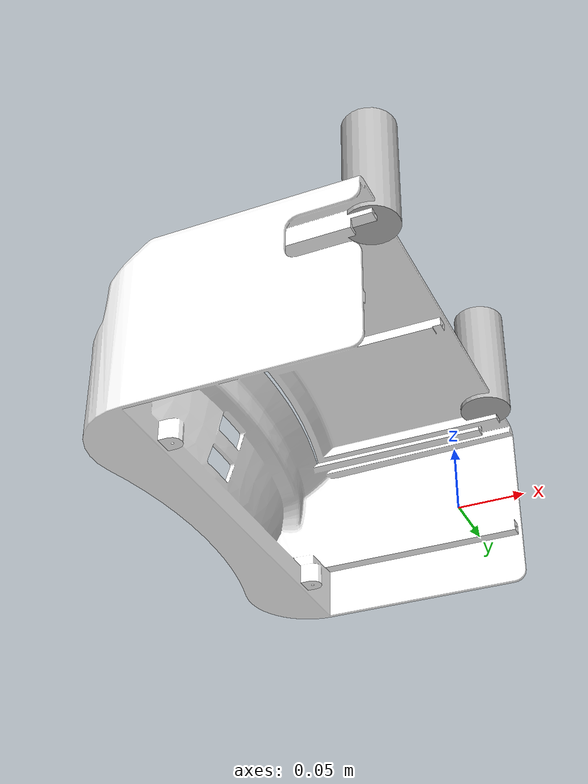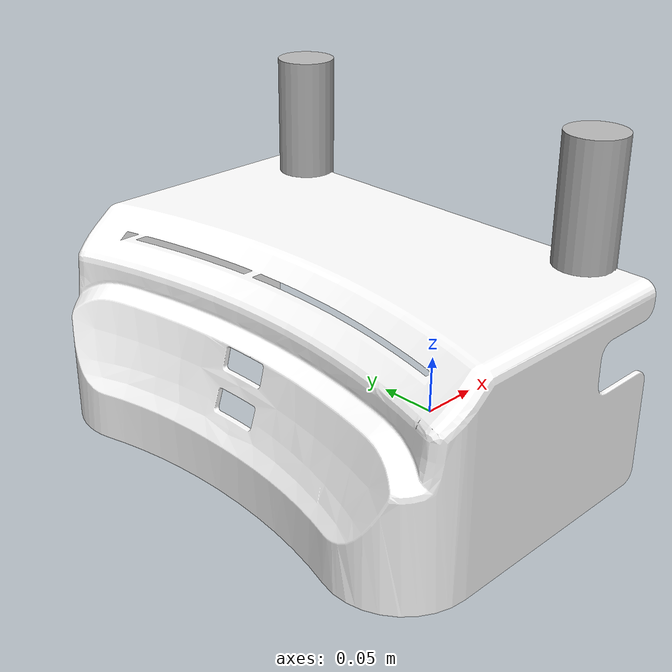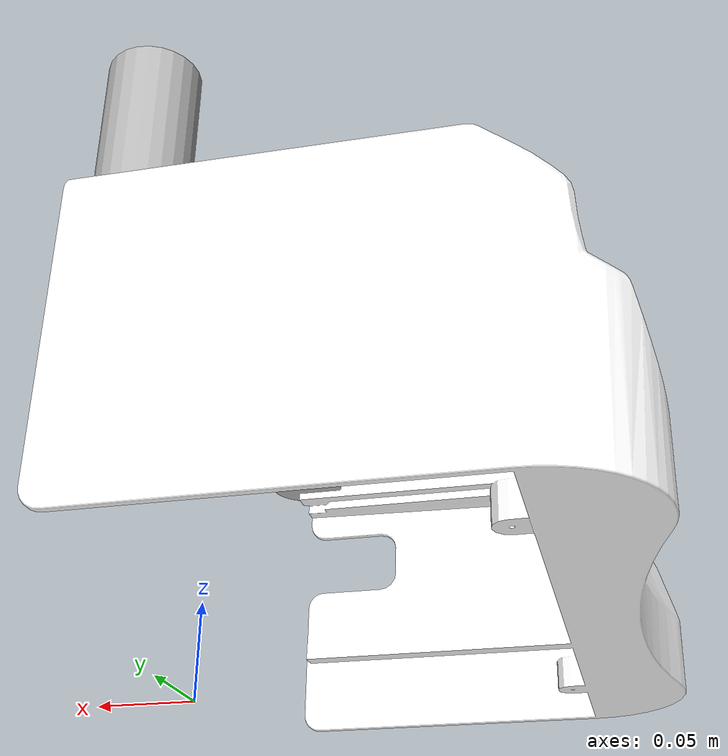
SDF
<?xml version='1.0'?>
<sdf version='1.4'>
  <model name="reflector_marker">
    <static>true</static>
    <link name='body'>
      <pose>0 0 0 0 0 0</pose>
      <inertial>
        <mass>5.0</mass>
        <inertia>
          <ixx>0.67705625</ixx>
          <ixy>0</ixy>
          <ixz>0</ixz>
          <iyy>0.033332</iyy>
          <iyz>0</iyz>
          <izz>0.67705625</izz>
        </inertia>
      </inertial>
      <collision name='collision'>
        <pose>0 0 0 0 0 0</pose>
        <geometry>
          <mesh><uri>file://station_charger.dae</uri></mesh>
        </geometry>
      </collision>
      <visual name='visual'>
        <pose>0 0 0.010000 0 0 0</pose>
        <geometry>
          <mesh><uri>file://station_charger.dae</uri></mesh>
        </geometry>
      </visual>
    </link>

    <link name='reflector_left'>
      <pose>-0.01 -0.135 0.22 0 0 0</pose>
      <inertial>
        <mass>0.390</mass>
        <inertia>
          <ixx>0.00058</ixx>
          <ixy>0</ixy>
          <ixz>0</ixz>
          <iyy>0.00058</iyy>
          <iyz>0</iyz>
          <izz>0.00019</izz>
        </inertia>
      </inertial>
      <collision name='collision'>
        <pose>0 0 0 0 0 0</pose>
        <laser_retro>2000</laser_retro>
        <geometry>
          <cylinder>
            <radius>0.022000</radius>
            <length>0.100000</length>
          </cylinder>
        </geometry>
      </collision>
      <visual name='visual'>
        <pose>0 0 0 0 0 0</pose>
        <laser_retro>2000</laser_retro>
        <geometry>
          <cylinder>
            <radius>0.022000</radius>
            <length>0.100000</length>
          </cylinder>
        </geometry>
        <material>
          <script>
            <name>ReflMarker/Diffuse</name>
          </script>
        </material>
      </visual>
    </link>

    <link name='reflector_right'>
      <pose>-0.01 0.135 0.22 0 0 0</pose>
      <inertial>
        <mass>0.390</mass>
        <inertia>
          <ixx>0.00058</ixx>
          <ixy>0</ixy>
          <ixz>0</ixz>
          <iyy>0.00058</iyy>
          <iyz>0</iyz>
          <izz>0.00019</izz>
        </inertia>
      </inertial>
      <collision name='collision'>
        <pose>0 0 0 0 0 0</pose>
        <laser_retro>2000</laser_retro>
        <geometry>
          <cylinder>
            <radius>0.022000</radius>
            <length>0.100000</length>
          </cylinder>
        </geometry>
      </collision>
      <visual name='visual'>
        <pose>0 0 0 0 0 0</pose>
        <laser_retro>2000</laser_retro>
        <geometry>
          <cylinder>
            <radius>0.022000</radius>
            <length>0.100000</length>
          </cylinder>
        </geometry>
        <material>
          <script>
            <name>ReflMarker/Diffuse</name>
          </script>
        </material>
      </visual>
    </link>
  </model>
</sdf>
